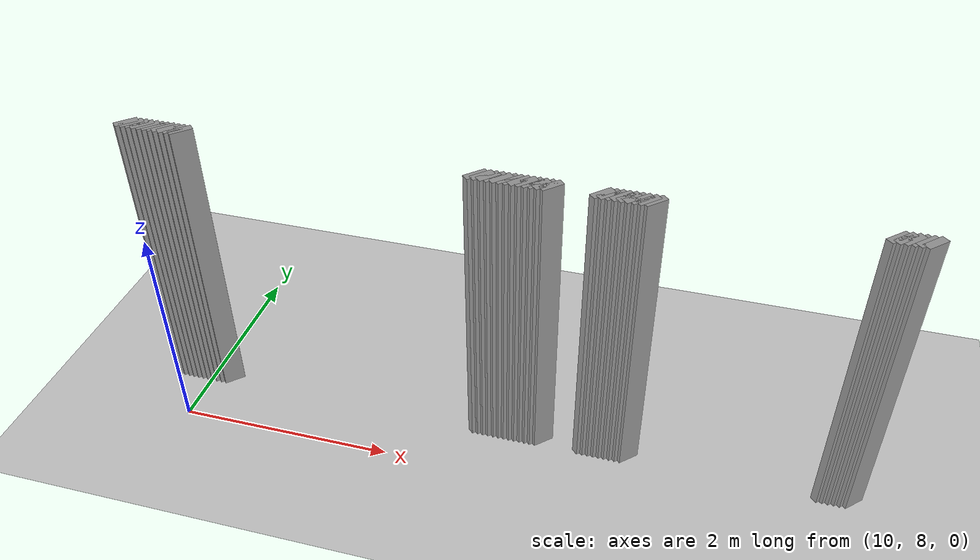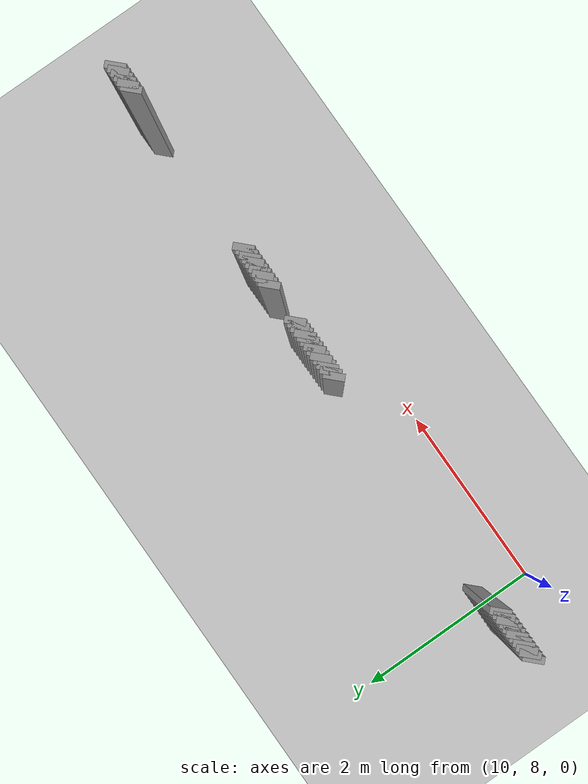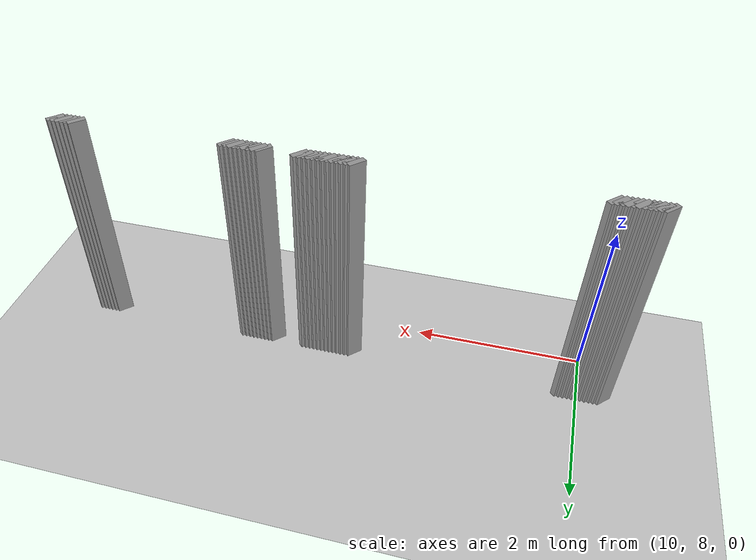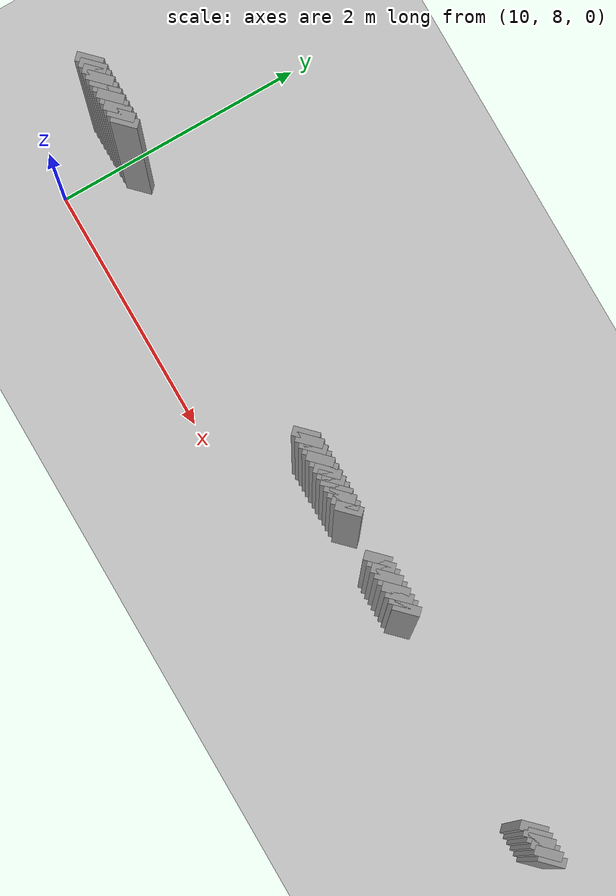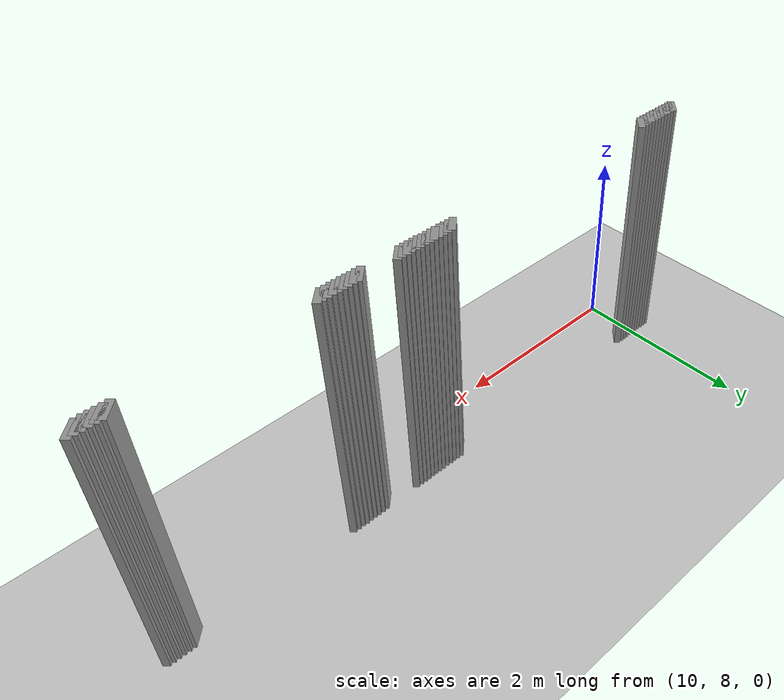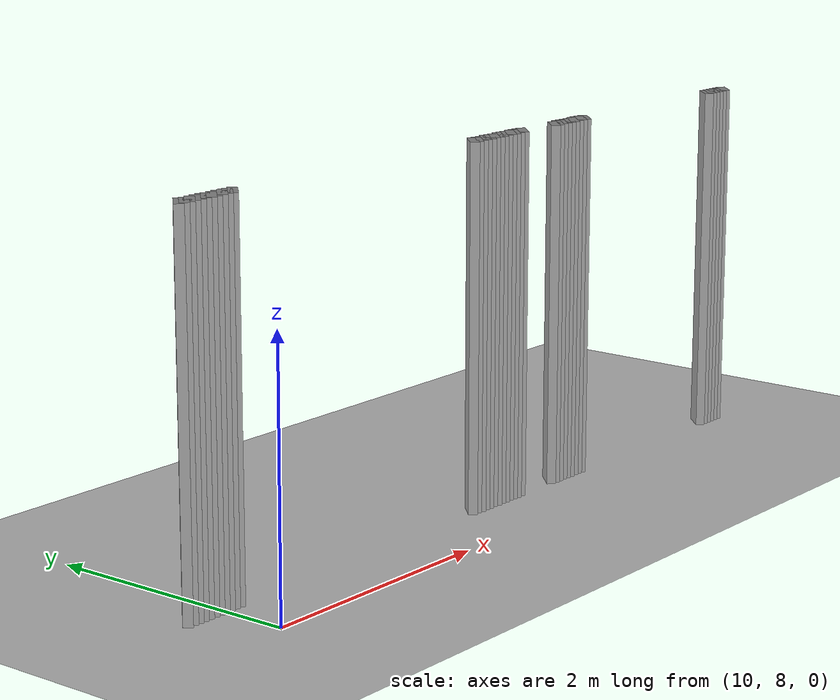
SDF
<sdf version="1.5">
 <world name="default">
  <include><uri>model://ground_plane</uri></include>
  <include><uri>model://sun</uri></include>
  <model name="grey_wall_3900">
   <static>1</static>
   <link name="link">
    <pose>9.7 8.55  1.4 0 0 -0.785398163397</pose>
    <collision name="collision"><geometry><box><size>0.0707106781187 .2  2.8</size></box></geometry></collision>
    <visual name="visual">
     <cast_shadows>0</cast_shadows>
     <geometry><box><size>0.0707106781187 .2  2.8</size></box></geometry>
     <material>
      <script>
       <uri>model://grey_wall/materials/scripts</uri>
       <uri>model://grey_wall/materials/textures</uri>
       <name>vrc/grey_wall</name>
      </script>
     </material>
    </visual>
   </link>
  </model>
  <model name="grey_wall_3901">
   <static>1</static>
   <link name="link">
    <pose>9.75 8.55  1.4 0 0 -0.785398163397</pose>
    <collision name="collision"><geometry><box><size>0.0707106781187 .2  2.8</size></box></geometry></collision>
    <visual name="visual">
     <cast_shadows>0</cast_shadows>
     <geometry><box><size>0.0707106781187 .2  2.8</size></box></geometry>
     <material>
      <script>
       <uri>model://grey_wall/materials/scripts</uri>
       <uri>model://grey_wall/materials/textures</uri>
       <name>vrc/grey_wall</name>
      </script>
     </material>
    </visual>
   </link>
  </model>
  <model name="grey_wall_3902">
   <static>1</static>
   <link name="link">
    <pose>9.8 8.55  1.4 0 0 -0.785398163397</pose>
    <collision name="collision"><geometry><box><size>0.0707106781187 .2  2.8</size></box></geometry></collision>
    <visual name="visual">
     <cast_shadows>0</cast_shadows>
     <geometry><box><size>0.0707106781187 .2  2.8</size></box></geometry>
     <material>
      <script>
       <uri>model://grey_wall/materials/scripts</uri>
       <uri>model://grey_wall/materials/textures</uri>
       <name>vrc/grey_wall</name>
      </script>
     </material>
    </visual>
   </link>
  </model>
  <model name="grey_wall_3903">
   <static>1</static>
   <link name="link">
    <pose>9.85 8.55  1.4 0 0 -0.785398163397</pose>
    <collision name="collision"><geometry><box><size>0.0707106781187 .2  2.8</size></box></geometry></collision>
    <visual name="visual">
     <cast_shadows>0</cast_shadows>
     <geometry><box><size>0.0707106781187 .2  2.8</size></box></geometry>
     <material>
      <script>
       <uri>model://grey_wall/materials/scripts</uri>
       <uri>model://grey_wall/materials/textures</uri>
       <name>vrc/grey_wall</name>
      </script>
     </material>
    </visual>
   </link>
  </model>
  <model name="grey_wall_3904">
   <static>1</static>
   <link name="link">
    <pose>9.9 8.55  1.4 0 0 -0.785398163397</pose>
    <collision name="collision"><geometry><box><size>0.0707106781187 .2  2.8</size></box></geometry></collision>
    <visual name="visual">
     <cast_shadows>0</cast_shadows>
     <geometry><box><size>0.0707106781187 .2  2.8</size></box></geometry>
     <material>
      <script>
       <uri>model://grey_wall/materials/scripts</uri>
       <uri>model://grey_wall/materials/textures</uri>
       <name>vrc/grey_wall</name>
      </script>
     </material>
    </visual>
   </link>
  </model>
  <model name="grey_wall_3905">
   <static>1</static>
   <link name="link">
    <pose>9.95 8.55  1.4 0 0 -0.785398163397</pose>
    <collision name="collision"><geometry><box><size>0.0707106781187 .2  2.8</size></box></geometry></collision>
    <visual name="visual">
     <cast_shadows>0</cast_shadows>
     <geometry><box><size>0.0707106781187 .2  2.8</size></box></geometry>
     <material>
      <script>
       <uri>model://grey_wall/materials/scripts</uri>
       <uri>model://grey_wall/materials/textures</uri>
       <name>vrc/grey_wall</name>
      </script>
     </material>
    </visual>
   </link>
  </model>
  <model name="grey_wall_3906">
   <static>1</static>
   <link name="link">
    <pose>10.0 8.55  1.4 0 0 -0.785398163397</pose>
    <collision name="collision"><geometry><box><size>0.0707106781187 .2  2.8</size></box></geometry></collision>
    <visual name="visual">
     <cast_shadows>0</cast_shadows>
     <geometry><box><size>0.0707106781187 .2  2.8</size></box></geometry>
     <material>
      <script>
       <uri>model://grey_wall/materials/scripts</uri>
       <uri>model://grey_wall/materials/textures</uri>
       <name>vrc/grey_wall</name>
      </script>
     </material>
    </visual>
   </link>
  </model>
  <model name="grey_wall_3907">
   <static>1</static>
   <link name="link">
    <pose>10.05 8.55  1.4 0 0 -0.785398163397</pose>
    <collision name="collision"><geometry><box><size>0.0707106781187 .2  2.8</size></box></geometry></collision>
    <visual name="visual">
     <cast_shadows>0</cast_shadows>
     <geometry><box><size>0.0707106781187 .2  2.8</size></box></geometry>
     <material>
      <script>
       <uri>model://grey_wall/materials/scripts</uri>
       <uri>model://grey_wall/materials/textures</uri>
       <name>vrc/grey_wall</name>
      </script>
     </material>
    </visual>
   </link>
  </model>
  <model name="grey_wall_3908">
   <static>1</static>
   <link name="link">
    <pose>10.1 8.55  1.4 0 0 -0.785398163397</pose>
    <collision name="collision"><geometry><box><size>0.0707106781187 .2  2.8</size></box></geometry></collision>
    <visual name="visual">
     <cast_shadows>0</cast_shadows>
     <geometry><box><size>0.0707106781187 .2  2.8</size></box></geometry>
     <material>
      <script>
       <uri>model://grey_wall/materials/scripts</uri>
       <uri>model://grey_wall/materials/textures</uri>
       <name>vrc/grey_wall</name>
      </script>
     </material>
    </visual>
   </link>
  </model>
  <model name="grey_wall_3909">
   <static>1</static>
   <link name="link">
    <pose>10.15 8.55  1.4 0 0 -0.785398163397</pose>
    <collision name="collision"><geometry><box><size>0.0707106781187 .2  2.8</size></box></geometry></collision>
    <visual name="visual">
     <cast_shadows>0</cast_shadows>
     <geometry><box><size>0.0707106781187 .2  2.8</size></box></geometry>
     <material>
      <script>
       <uri>model://grey_wall/materials/scripts</uri>
       <uri>model://grey_wall/materials/textures</uri>
       <name>vrc/grey_wall</name>
      </script>
     </material>
    </visual>
   </link>
  </model>
  <model name="grey_wall_3910">
   <static>1</static>
   <link name="link">
    <pose>10.2 8.55  1.4 0 0 -0.785398163397</pose>
    <collision name="collision"><geometry><box><size>0.0707106781187 .2  2.8</size></box></geometry></collision>
    <visual name="visual">
     <cast_shadows>0</cast_shadows>
     <geometry><box><size>0.0707106781187 .2  2.8</size></box></geometry>
     <material>
      <script>
       <uri>model://grey_wall/materials/scripts</uri>
       <uri>model://grey_wall/materials/textures</uri>
       <name>vrc/grey_wall</name>
      </script>
     </material>
    </visual>
   </link>
  </model>
  <model name="grey_wall_3911">
   <static>1</static>
   <link name="link">
    <pose>12.75 8.55  1.4 0 0 -0.785398163397</pose>
    <collision name="collision"><geometry><box><size>0.0707106781187 .2  2.8</size></box></geometry></collision>
    <visual name="visual">
     <cast_shadows>0</cast_shadows>
     <geometry><box><size>0.0707106781187 .2  2.8</size></box></geometry>
     <material>
      <script>
       <uri>model://grey_wall/materials/scripts</uri>
       <uri>model://grey_wall/materials/textures</uri>
       <name>vrc/grey_wall</name>
      </script>
     </material>
    </visual>
   </link>
  </model>
  <model name="grey_wall_3912">
   <static>1</static>
   <link name="link">
    <pose>12.8 8.55  1.4 0 0 -0.785398163397</pose>
    <collision name="collision"><geometry><box><size>0.0707106781187 .2  2.8</size></box></geometry></collision>
    <visual name="visual">
     <cast_shadows>0</cast_shadows>
     <geometry><box><size>0.0707106781187 .2  2.8</size></box></geometry>
     <material>
      <script>
       <uri>model://grey_wall/materials/scripts</uri>
       <uri>model://grey_wall/materials/textures</uri>
       <name>vrc/grey_wall</name>
      </script>
     </material>
    </visual>
   </link>
  </model>
  <model name="grey_wall_3913">
   <static>1</static>
   <link name="link">
    <pose>12.85 8.55  1.4 0 0 -0.785398163397</pose>
    <collision name="collision"><geometry><box><size>0.0707106781187 .2  2.8</size></box></geometry></collision>
    <visual name="visual">
     <cast_shadows>0</cast_shadows>
     <geometry><box><size>0.0707106781187 .2  2.8</size></box></geometry>
     <material>
      <script>
       <uri>model://grey_wall/materials/scripts</uri>
       <uri>model://grey_wall/materials/textures</uri>
       <name>vrc/grey_wall</name>
      </script>
     </material>
    </visual>
   </link>
  </model>
  <model name="grey_wall_3914">
   <static>1</static>
   <link name="link">
    <pose>12.9 8.55  1.4 0 0 -0.785398163397</pose>
    <collision name="collision"><geometry><box><size>0.0707106781187 .2  2.8</size></box></geometry></collision>
    <visual name="visual">
     <cast_shadows>0</cast_shadows>
     <geometry><box><size>0.0707106781187 .2  2.8</size></box></geometry>
     <material>
      <script>
       <uri>model://grey_wall/materials/scripts</uri>
       <uri>model://grey_wall/materials/textures</uri>
       <name>vrc/grey_wall</name>
      </script>
     </material>
    </visual>
   </link>
  </model>
  <model name="grey_wall_3915">
   <static>1</static>
   <link name="link">
    <pose>12.95 8.55  1.4 0 0 -0.785398163397</pose>
    <collision name="collision"><geometry><box><size>0.0707106781187 .2  2.8</size></box></geometry></collision>
    <visual name="visual">
     <cast_shadows>0</cast_shadows>
     <geometry><box><size>0.0707106781187 .2  2.8</size></box></geometry>
     <material>
      <script>
       <uri>model://grey_wall/materials/scripts</uri>
       <uri>model://grey_wall/materials/textures</uri>
       <name>vrc/grey_wall</name>
      </script>
     </material>
    </visual>
   </link>
  </model>
  <model name="grey_wall_3916">
   <static>1</static>
   <link name="link">
    <pose>13.0 8.55  1.4 0 0 -0.785398163397</pose>
    <collision name="collision"><geometry><box><size>0.0707106781187 .2  2.8</size></box></geometry></collision>
    <visual name="visual">
     <cast_shadows>0</cast_shadows>
     <geometry><box><size>0.0707106781187 .2  2.8</size></box></geometry>
     <material>
      <script>
       <uri>model://grey_wall/materials/scripts</uri>
       <uri>model://grey_wall/materials/textures</uri>
       <name>vrc/grey_wall</name>
      </script>
     </material>
    </visual>
   </link>
  </model>
  <model name="grey_wall_3917">
   <static>1</static>
   <link name="link">
    <pose>13.05 8.55  1.4 0 0 -0.785398163397</pose>
    <collision name="collision"><geometry><box><size>0.0707106781187 .2  2.8</size></box></geometry></collision>
    <visual name="visual">
     <cast_shadows>0</cast_shadows>
     <geometry><box><size>0.0707106781187 .2  2.8</size></box></geometry>
     <material>
      <script>
       <uri>model://grey_wall/materials/scripts</uri>
       <uri>model://grey_wall/materials/textures</uri>
       <name>vrc/grey_wall</name>
      </script>
     </material>
    </visual>
   </link>
  </model>
  <model name="grey_wall_3918">
   <static>1</static>
   <link name="link">
    <pose>13.1 8.55  1.4 0 0 -0.785398163397</pose>
    <collision name="collision"><geometry><box><size>0.0707106781187 .2  2.8</size></box></geometry></collision>
    <visual name="visual">
     <cast_shadows>0</cast_shadows>
     <geometry><box><size>0.0707106781187 .2  2.8</size></box></geometry>
     <material>
      <script>
       <uri>model://grey_wall/materials/scripts</uri>
       <uri>model://grey_wall/materials/textures</uri>
       <name>vrc/grey_wall</name>
      </script>
     </material>
    </visual>
   </link>
  </model>
  <model name="grey_wall_3919">
   <static>1</static>
   <link name="link">
    <pose>13.15 8.55  1.4 0 0 -0.785398163397</pose>
    <collision name="collision"><geometry><box><size>0.0707106781187 .2  2.8</size></box></geometry></collision>
    <visual name="visual">
     <cast_shadows>0</cast_shadows>
     <geometry><box><size>0.0707106781187 .2  2.8</size></box></geometry>
     <material>
      <script>
       <uri>model://grey_wall/materials/scripts</uri>
       <uri>model://grey_wall/materials/textures</uri>
       <name>vrc/grey_wall</name>
      </script>
     </material>
    </visual>
   </link>
  </model>
  <model name="grey_wall_3920">
   <static>1</static>
   <link name="link">
    <pose>13.2 8.55  1.4 0 0 -0.785398163397</pose>
    <collision name="collision"><geometry><box><size>0.0707106781187 .2  2.8</size></box></geometry></collision>
    <visual name="visual">
     <cast_shadows>0</cast_shadows>
     <geometry><box><size>0.0707106781187 .2  2.8</size></box></geometry>
     <material>
      <script>
       <uri>model://grey_wall/materials/scripts</uri>
       <uri>model://grey_wall/materials/textures</uri>
       <name>vrc/grey_wall</name>
      </script>
     </material>
    </visual>
   </link>
  </model>
  <model name="grey_wall_3921">
   <static>1</static>
   <link name="link">
    <pose>13.25 8.55  1.4 0 0 -0.785398163397</pose>
    <collision name="collision"><geometry><box><size>0.0707106781187 .2  2.8</size></box></geometry></collision>
    <visual name="visual">
     <cast_shadows>0</cast_shadows>
     <geometry><box><size>0.0707106781187 .2  2.8</size></box></geometry>
     <material>
      <script>
       <uri>model://grey_wall/materials/scripts</uri>
       <uri>model://grey_wall/materials/textures</uri>
       <name>vrc/grey_wall</name>
      </script>
     </material>
    </visual>
   </link>
  </model>
  <model name="grey_wall_3922">
   <static>1</static>
   <link name="link">
    <pose>13.3 8.55  1.4 0 0 -0.785398163397</pose>
    <collision name="collision"><geometry><box><size>0.0707106781187 .2  2.8</size></box></geometry></collision>
    <visual name="visual">
     <cast_shadows>0</cast_shadows>
     <geometry><box><size>0.0707106781187 .2  2.8</size></box></geometry>
     <material>
      <script>
       <uri>model://grey_wall/materials/scripts</uri>
       <uri>model://grey_wall/materials/textures</uri>
       <name>vrc/grey_wall</name>
      </script>
     </material>
    </visual>
   </link>
  </model>
  <model name="grey_wall_3923">
   <static>1</static>
   <link name="link">
    <pose>13.35 8.55  1.4 0 0 -0.785398163397</pose>
    <collision name="collision"><geometry><box><size>0.0707106781187 .2  2.8</size></box></geometry></collision>
    <visual name="visual">
     <cast_shadows>0</cast_shadows>
     <geometry><box><size>0.0707106781187 .2  2.8</size></box></geometry>
     <material>
      <script>
       <uri>model://grey_wall/materials/scripts</uri>
       <uri>model://grey_wall/materials/textures</uri>
       <name>vrc/grey_wall</name>
      </script>
     </material>
    </visual>
   </link>
  </model>
  <model name="grey_wall_3924">
   <static>1</static>
   <link name="link">
    <pose>13.75 8.55  1.4 0 0 -0.785398163397</pose>
    <collision name="collision"><geometry><box><size>0.0707106781187 .2  2.8</size></box></geometry></collision>
    <visual name="visual">
     <cast_shadows>0</cast_shadows>
     <geometry><box><size>0.0707106781187 .2  2.8</size></box></geometry>
     <material>
      <script>
       <uri>model://grey_wall/materials/scripts</uri>
       <uri>model://grey_wall/materials/textures</uri>
       <name>vrc/grey_wall</name>
      </script>
     </material>
    </visual>
   </link>
  </model>
  <model name="grey_wall_3925">
   <static>1</static>
   <link name="link">
    <pose>13.8 8.55  1.4 0 0 -0.785398163397</pose>
    <collision name="collision"><geometry><box><size>0.0707106781187 .2  2.8</size></box></geometry></collision>
    <visual name="visual">
     <cast_shadows>0</cast_shadows>
     <geometry><box><size>0.0707106781187 .2  2.8</size></box></geometry>
     <material>
      <script>
       <uri>model://grey_wall/materials/scripts</uri>
       <uri>model://grey_wall/materials/textures</uri>
       <name>vrc/grey_wall</name>
      </script>
     </material>
    </visual>
   </link>
  </model>
  <model name="grey_wall_3926">
   <static>1</static>
   <link name="link">
    <pose>13.85 8.55  1.4 0 0 -0.785398163397</pose>
    <collision name="collision"><geometry><box><size>0.0707106781187 .2  2.8</size></box></geometry></collision>
    <visual name="visual">
     <cast_shadows>0</cast_shadows>
     <geometry><box><size>0.0707106781187 .2  2.8</size></box></geometry>
     <material>
      <script>
       <uri>model://grey_wall/materials/scripts</uri>
       <uri>model://grey_wall/materials/textures</uri>
       <name>vrc/grey_wall</name>
      </script>
     </material>
    </visual>
   </link>
  </model>
  <model name="grey_wall_3927">
   <static>1</static>
   <link name="link">
    <pose>13.9 8.55  1.4 0 0 -0.785398163397</pose>
    <collision name="collision"><geometry><box><size>0.0707106781187 .2  2.8</size></box></geometry></collision>
    <visual name="visual">
     <cast_shadows>0</cast_shadows>
     <geometry><box><size>0.0707106781187 .2  2.8</size></box></geometry>
     <material>
      <script>
       <uri>model://grey_wall/materials/scripts</uri>
       <uri>model://grey_wall/materials/textures</uri>
       <name>vrc/grey_wall</name>
      </script>
     </material>
    </visual>
   </link>
  </model>
  <model name="grey_wall_3928">
   <static>1</static>
   <link name="link">
    <pose>13.95 8.55  1.4 0 0 -0.785398163397</pose>
    <collision name="collision"><geometry><box><size>0.0707106781187 .2  2.8</size></box></geometry></collision>
    <visual name="visual">
     <cast_shadows>0</cast_shadows>
     <geometry><box><size>0.0707106781187 .2  2.8</size></box></geometry>
     <material>
      <script>
       <uri>model://grey_wall/materials/scripts</uri>
       <uri>model://grey_wall/materials/textures</uri>
       <name>vrc/grey_wall</name>
      </script>
     </material>
    </visual>
   </link>
  </model>
  <model name="grey_wall_3929">
   <static>1</static>
   <link name="link">
    <pose>14.0 8.55  1.4 0 0 -0.785398163397</pose>
    <collision name="collision"><geometry><box><size>0.0707106781187 .2  2.8</size></box></geometry></collision>
    <visual name="visual">
     <cast_shadows>0</cast_shadows>
     <geometry><box><size>0.0707106781187 .2  2.8</size></box></geometry>
     <material>
      <script>
       <uri>model://grey_wall/materials/scripts</uri>
       <uri>model://grey_wall/materials/textures</uri>
       <name>vrc/grey_wall</name>
      </script>
     </material>
    </visual>
   </link>
  </model>
  <model name="grey_wall_3930">
   <static>1</static>
   <link name="link">
    <pose>14.05 8.55  1.4 0 0 -0.785398163397</pose>
    <collision name="collision"><geometry><box><size>0.0707106781187 .2  2.8</size></box></geometry></collision>
    <visual name="visual">
     <cast_shadows>0</cast_shadows>
     <geometry><box><size>0.0707106781187 .2  2.8</size></box></geometry>
     <material>
      <script>
       <uri>model://grey_wall/materials/scripts</uri>
       <uri>model://grey_wall/materials/textures</uri>
       <name>vrc/grey_wall</name>
      </script>
     </material>
    </visual>
   </link>
  </model>
  <model name="grey_wall_3931">
   <static>1</static>
   <link name="link">
    <pose>14.1 8.55  1.4 0 0 -0.785398163397</pose>
    <collision name="collision"><geometry><box><size>0.0707106781187 .2  2.8</size></box></geometry></collision>
    <visual name="visual">
     <cast_shadows>0</cast_shadows>
     <geometry><box><size>0.0707106781187 .2  2.8</size></box></geometry>
     <material>
      <script>
       <uri>model://grey_wall/materials/scripts</uri>
       <uri>model://grey_wall/materials/textures</uri>
       <name>vrc/grey_wall</name>
      </script>
     </material>
    </visual>
   </link>
  </model>
  <model name="grey_wall_3932">
   <static>1</static>
   <link name="link">
    <pose>14.15 8.55  1.4 0 0 -0.785398163397</pose>
    <collision name="collision"><geometry><box><size>0.0707106781187 .2  2.8</size></box></geometry></collision>
    <visual name="visual">
     <cast_shadows>0</cast_shadows>
     <geometry><box><size>0.0707106781187 .2  2.8</size></box></geometry>
     <material>
      <script>
       <uri>model://grey_wall/materials/scripts</uri>
       <uri>model://grey_wall/materials/textures</uri>
       <name>vrc/grey_wall</name>
      </script>
     </material>
    </visual>
   </link>
  </model>
  <model name="grey_wall_3933">
   <static>1</static>
   <link name="link">
    <pose>15.9 8.55  1.4 0 0 -0.785398163397</pose>
    <collision name="collision"><geometry><box><size>0.0707106781187 .2  2.8</size></box></geometry></collision>
    <visual name="visual">
     <cast_shadows>0</cast_shadows>
     <geometry><box><size>0.0707106781187 .2  2.8</size></box></geometry>
     <material>
      <script>
       <uri>model://grey_wall/materials/scripts</uri>
       <uri>model://grey_wall/materials/textures</uri>
       <name>vrc/grey_wall</name>
      </script>
     </material>
    </visual>
   </link>
  </model>
  <model name="grey_wall_3934">
   <static>1</static>
   <link name="link">
    <pose>15.95 8.55  1.4 0 0 -0.785398163397</pose>
    <collision name="collision"><geometry><box><size>0.0707106781187 .2  2.8</size></box></geometry></collision>
    <visual name="visual">
     <cast_shadows>0</cast_shadows>
     <geometry><box><size>0.0707106781187 .2  2.8</size></box></geometry>
     <material>
      <script>
       <uri>model://grey_wall/materials/scripts</uri>
       <uri>model://grey_wall/materials/textures</uri>
       <name>vrc/grey_wall</name>
      </script>
     </material>
    </visual>
   </link>
  </model>
  <model name="grey_wall_3935">
   <static>1</static>
   <link name="link">
    <pose>16.0 8.55  1.4 0 0 -0.785398163397</pose>
    <collision name="collision"><geometry><box><size>0.0707106781187 .2  2.8</size></box></geometry></collision>
    <visual name="visual">
     <cast_shadows>0</cast_shadows>
     <geometry><box><size>0.0707106781187 .2  2.8</size></box></geometry>
     <material>
      <script>
       <uri>model://grey_wall/materials/scripts</uri>
       <uri>model://grey_wall/materials/textures</uri>
       <name>vrc/grey_wall</name>
      </script>
     </material>
    </visual>
   </link>
  </model>
  <model name="grey_wall_3936">
   <static>1</static>
   <link name="link">
    <pose>16.05 8.55  1.4 0 0 -0.785398163397</pose>
    <collision name="collision"><geometry><box><size>0.0707106781187 .2  2.8</size></box></geometry></collision>
    <visual name="visual">
     <cast_shadows>0</cast_shadows>
     <geometry><box><size>0.0707106781187 .2  2.8</size></box></geometry>
     <material>
      <script>
       <uri>model://grey_wall/materials/scripts</uri>
       <uri>model://grey_wall/materials/textures</uri>
       <name>vrc/grey_wall</name>
      </script>
     </material>
    </visual>
   </link>
  </model>
  <model name="grey_wall_3937">
   <static>1</static>
   <link name="link">
    <pose>16.1 8.55  1.4 0 0 -0.785398163397</pose>
    <collision name="collision"><geometry><box><size>0.0707106781187 .2  2.8</size></box></geometry></collision>
    <visual name="visual">
     <cast_shadows>0</cast_shadows>
     <geometry><box><size>0.0707106781187 .2  2.8</size></box></geometry>
     <material>
      <script>
       <uri>model://grey_wall/materials/scripts</uri>
       <uri>model://grey_wall/materials/textures</uri>
       <name>vrc/grey_wall</name>
      </script>
     </material>
    </visual>
   </link>
  </model>
  <model name="grey_wall_3938">
   <static>1</static>
   <link name="link">
    <pose>16.15 8.55  1.4 0 0 -0.785398163397</pose>
    <collision name="collision"><geometry><box><size>0.0707106781187 .2  2.8</size></box></geometry></collision>
    <visual name="visual">
     <cast_shadows>0</cast_shadows>
     <geometry><box><size>0.0707106781187 .2  2.8</size></box></geometry>
     <material>
      <script>
       <uri>model://grey_wall/materials/scripts</uri>
       <uri>model://grey_wall/materials/textures</uri>
       <name>vrc/grey_wall</name>
      </script>
     </material>
    </visual>
   </link>
  </model>
 </world>
</sdf>
